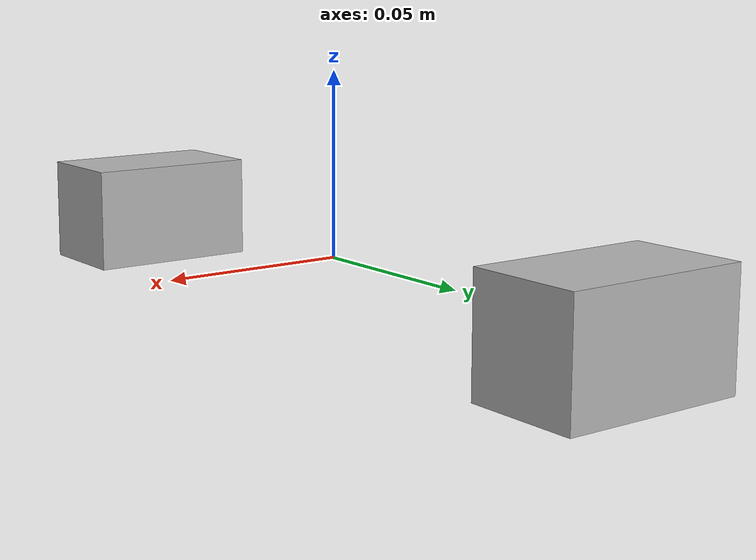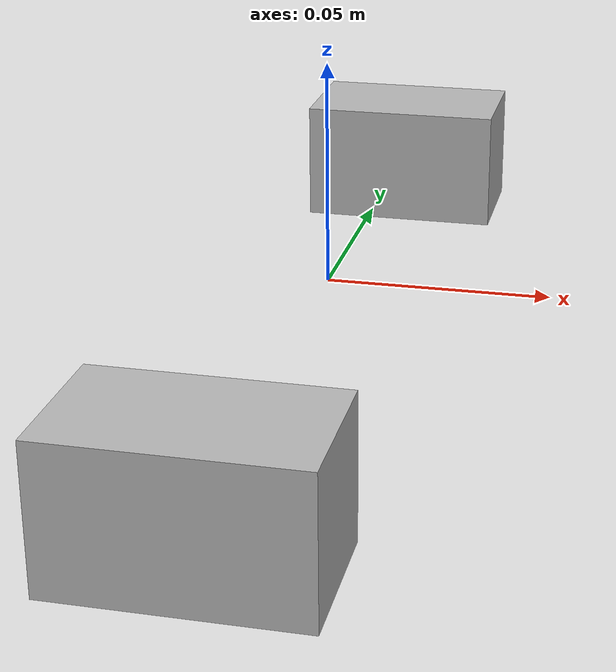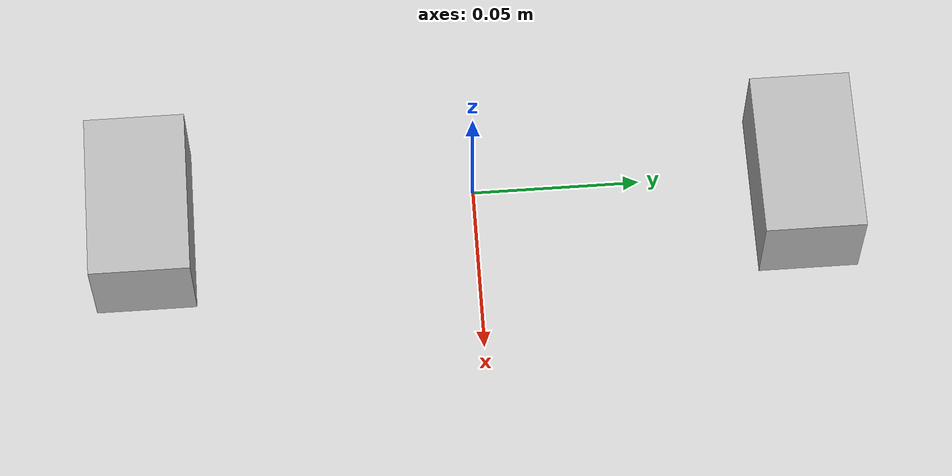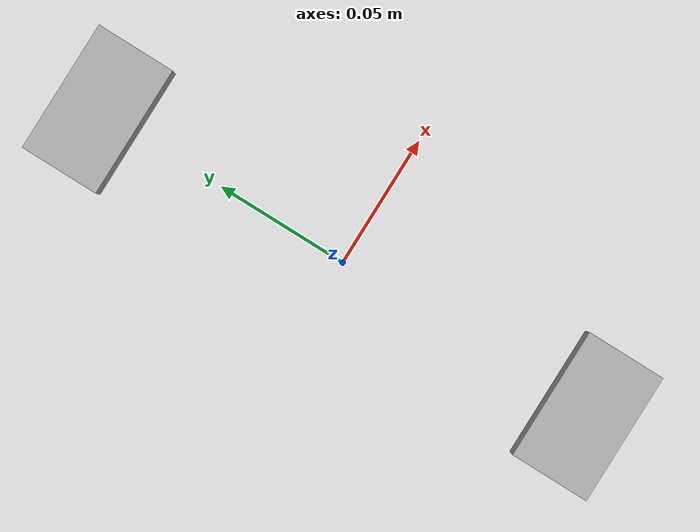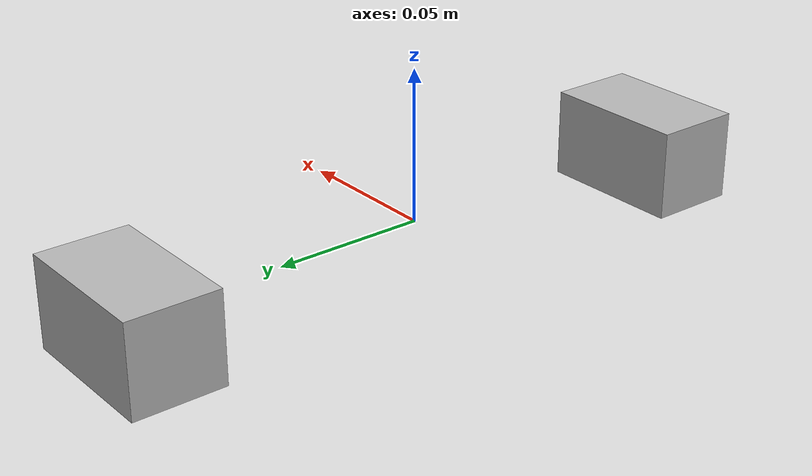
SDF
<?xml version="1.0"?>
<sdf version='1.6'>
  <model name="stereo_camera">
    <!-- camera0 -->
    <link name="camera0">
      <gravity>0</gravity>
      <pose>0.0 0.1 0.0 0.0 0.0 0.0</pose>

      <collision name="collision">
        <geometry>
          <box>
            <size>0.05 0.03 0.03</size>
          </box>
        </geometry>
      </collision>

      <visual name="visual">
        <geometry>
          <box>
            <size>0.05 0.03 0.03</size>
          </box>
        </geometry>
      </visual>

      <sensor name="camera0" type="camera">
        <pose>0.025 0.0 0.0 0.0 0.0 0.0</pose>
        <camera>
          <horizontal_fov>1.047</horizontal_fov>
          <image>
            <width>640</width>
            <height>640</height>
          </image>
          <clip>
            <near>0.01</near>
            <far>200</far>
          </clip>
          <noise>
            <type>gaussian</type>
            <mean>0.0</mean>
            <stddev>0.0</stddev>
          </noise>
        </camera>

        <always_on>1</always_on>
        <update_rate>60</update_rate>
        <visualize>true</visualize>
        <plugin name="proto_camera_plugin" filename="libproto_camera_plugin.so">
          <topic_name>/stereo_camera/camera0</topic_name>
        </plugin>
      </sensor>
    </link>

    <!-- camera1 -->
    <link name="camera1">
      <gravity>0</gravity>
      <pose>0.0 -0.1 0.0 0.0 0.0 0.0</pose>

      <collision name="collision">
        <geometry>
          <box>
            <size>0.05 0.03 0.03</size>
          </box>
        </geometry>
      </collision>

      <visual name="visual">
        <geometry>
          <box>
            <size>0.05 0.03 0.03</size>
          </box>
        </geometry>
      </visual>

      <sensor name="camera1" type="camera">
        <pose>0.025 0.0 0.0 0.0 0.0 0.0</pose>
        <camera>
          <horizontal_fov>1.047</horizontal_fov>
          <image>
            <width>640</width>
            <height>640</height>
          </image>
          <clip>
            <near>0.01</near>
            <far>200</far>
          </clip>
          <noise>
            <type>gaussian</type>
            <mean>0.0</mean>
            <stddev>0.0</stddev>
          </noise>
        </camera>

        <always_on>1</always_on>
        <update_rate>60</update_rate>
        <visualize>true</visualize>
        <plugin name="proto_camera_plugin" filename="libproto_camera_plugin.so">
          <topic_name>/stereo_camera/camera1</topic_name>
        </plugin>
      </sensor>
    </link>

    <plugin name="proto_pose_plugin" filename="libproto_pose_plugin.so">
      <pose_topic>/stereo_camera/pose</pose_topic>
      <pose_set_topic>/stereo_camera/pose</pose_set_topic>
    </plugin>
  </model>
</sdf>
